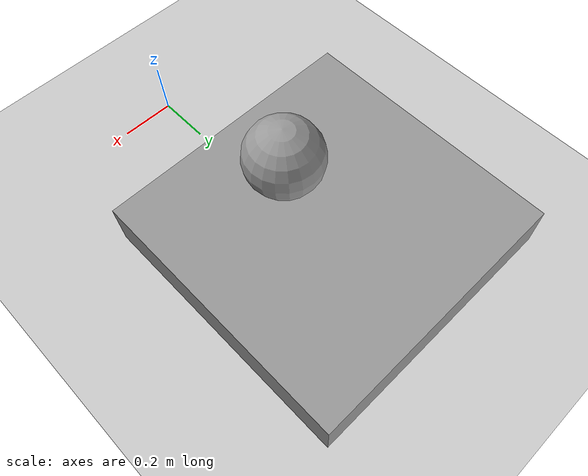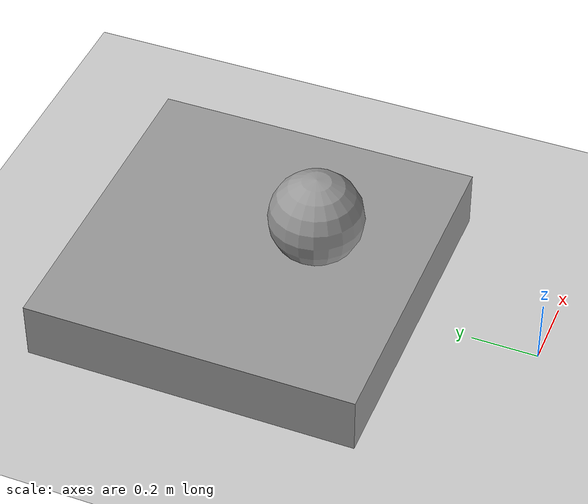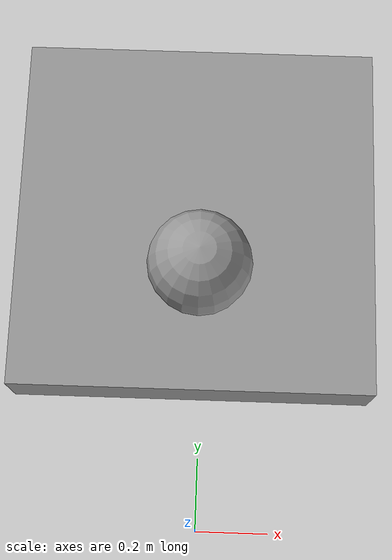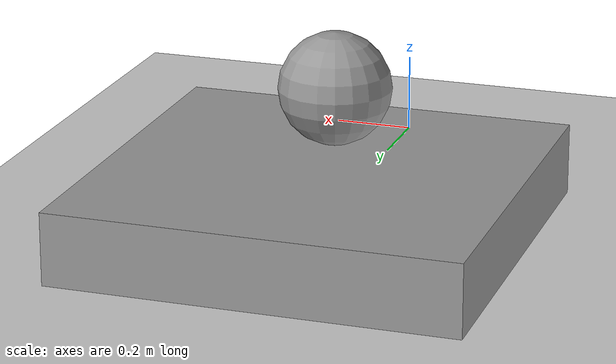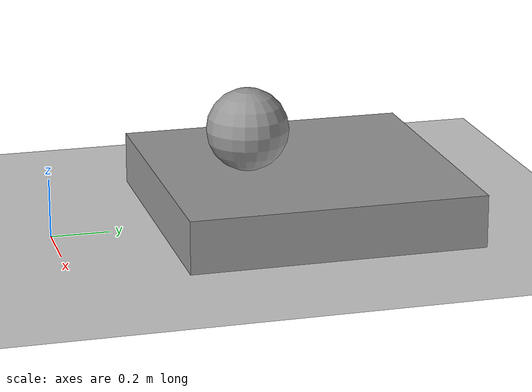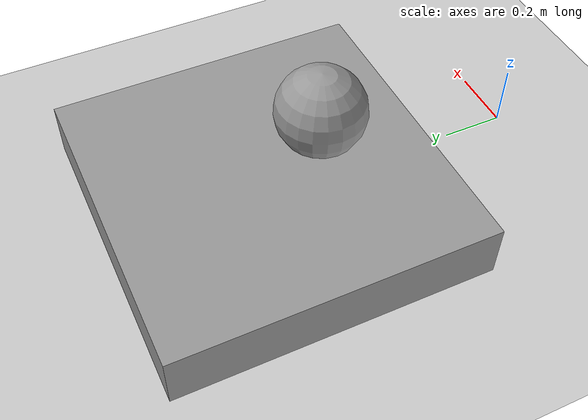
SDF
<sdf version="1.7">
 <world name="objet">
  <light name="sun" type="directional">
   <pose>0 0 10 0 -0 0</pose>
   <diffuse>0.8 0.8 0.8 1</diffuse>
   <specular>0.2 0.2 0.2 1</specular>
   <attenuation>
    <range>1000</range>
    <constant>0.9</constant>
    <linear>0.01</linear>
    <quadratic>0.001</quadratic>
   </attenuation>
   <direction>-0.5 0.1 -0.9</direction>
   <spot><inner_angle>0</inner_angle><outer_angle>0</outer_angle><falloff>0</falloff></spot>
  </light>
  <model name="ground_plane">
   <static>1</static>
   <link name="link">
    <collision name="collision">
     <geometry><plane><normal>0 0 1</normal><size>100 100</size></plane></geometry>
     <surface>
      <contact><collide_bitmask>65535</collide_bitmask></contact>
      <friction><ode><mu>100</mu><mu2>50</mu2></ode></friction>
     </surface>
    </collision>
    <visual name="visual">
     <cast_shadows>0</cast_shadows>
     <geometry><plane><normal>0 0 1</normal><size>100 100</size></plane></geometry>
     <material>
      <script><uri>file://media/materials/scripts/gazebo.material</uri><name>Gazebo/Grey</name></script>
     </material>
    </visual>
   </link>
  </model>
  <gravity>0 0 -9.8</gravity>
  <magnetic_field>6e-06 2.3e-05 -4.2e-05</magnetic_field>
  <atmosphere type="adiabatic"/>
  <physics type="ode">
   <max_step_size>0.001</max_step_size>
   <real_time_factor>1</real_time_factor>
   <real_time_update_rate>1000</real_time_update_rate>
  </physics>
  <scene><ambient>0.4 0.4 0.4 1</ambient><background>0.7 0.7 0.7 1</background><shadows>1</shadows></scene>
  <spherical_coordinates>
   <surface_model>EARTH_WGS84</surface_model>
   <latitude_deg>0</latitude_deg>
   <longitude_deg>0</longitude_deg>
   <elevation>0</elevation>
   <heading_deg>0</heading_deg>
  </spherical_coordinates>
  <model name="unit_box">
   <pose>-0.025358 0.865709 0.089413 9e-06 1e-06 -1e-06</pose>
   <link name="link">
    <inertial>
     <mass>1</mass>
     <inertia>
      <ixx>0.166667</ixx>
      <ixy>0</ixy>
      <ixz>0</ixz>
      <iyy>0.166667</iyy>
      <iyz>0</iyz>
      <izz>0.166667</izz>
     </inertia>
    </inertial>
    <collision name="collision"><geometry><box><size>1 1 0.178863</size></box></geometry></collision>
    <visual name="visual">
     <geometry><box><size>1 1 0.178863</size></box></geometry>
     <material>
      <script><name>Gazebo/Grey</name><uri>file://media/materials/scripts/gazebo.material</uri></script>
     </material>
    </visual>
   </link>
  </model>
  <model name="unit_sphere">
   <pose>-0.009955 0.680351 0.319206 0.001427 0.000154 -0</pose>
   <link name="link">
    <inertial>
     <mass>1</mass>
     <inertia><ixx>0.1</ixx><ixy>0</ixy><ixz>0</ixz><iyy>0.1</iyy><iyz>0</iyz><izz>0.1</izz></inertia>
    </inertial>
    <collision name="collision"><geometry><sphere><radius>0.140363</radius></sphere></geometry></collision>
    <visual name="visual">
     <geometry><sphere><radius>0.140363</radius></sphere></geometry>
     <material>
      <script><name>Gazebo/Grey</name><uri>file://media/materials/scripts/gazebo.material</uri></script>
     </material>
    </visual>
   </link>
  </model>
 </world>
</sdf>
